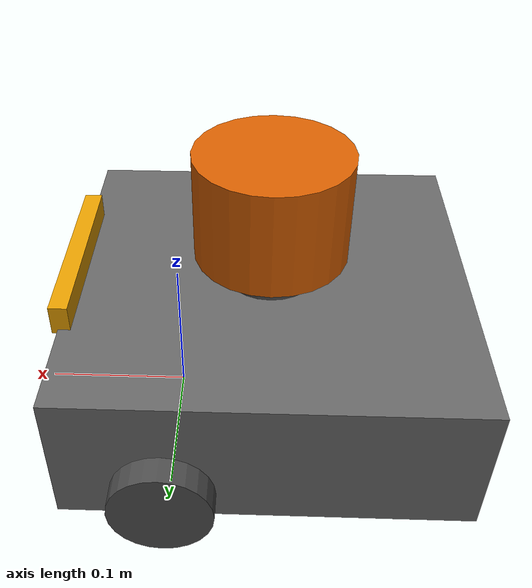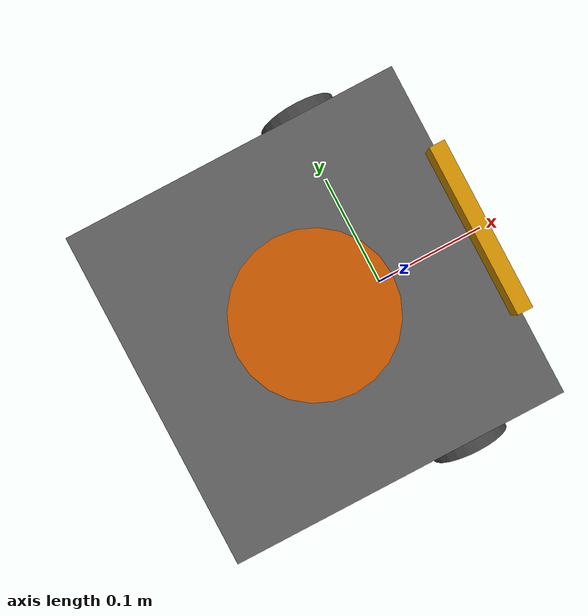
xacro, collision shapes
<?xml version="1.0" ?>
<robot name="turtlebot3_waffle" xmlns:xacro="http://ros.org/wiki/xacro">
  <xacro:arg name="namespace" default=""/>
  <xacro:property name="namespace" value="$(arg namespace)"/>
  <xacro:arg name="sensor_profile" default="vlp16"/>
  <xacro:property name="sensor_profile" value="$(arg sensor_profile)"/>
  <xacro:arg name="odom_frame" default="map"/>
  <xacro:arg name="publish_odom_tf" default="true"/>
  <xacro:include filename="$(find velodyne_description)/urdf/VLP-16.urdf.xacro"/>
  <!-- Init colour -->
  <material name="black">
      <color rgba="0.0 0.0 0.0 1.0"/>
  </material>

  <material name="dark">
    <color rgba="0.3 0.3 0.3 1.0"/>
  </material>

  <material name="light_black">
    <color rgba="0.4 0.4 0.4 1.0"/>
  </material>

  <material name="blue">
    <color rgba="0.0 0.0 0.8 1.0"/>
  </material>

  <material name="green">
    <color rgba="0.0 0.8 0.0 1.0"/>
  </material>

  <material name="grey">
    <color rgba="0.5 0.5 0.5 1.0"/>
  </material>

  <material name="orange">
    <color rgba="1.0 0.4235 0.0392 1.0"/>
  </material>

  <material name="brown">
    <color rgba="0.8706 0.8118 0.7647 1.0"/>
  </material>

  <material name="red">
    <color rgba="0.8 0.0 0.0 1.0"/>
  </material>

  <material name="white">
    <color rgba="1.0 1.0 1.0 1.0"/>
  </material>

  <link name="${namespace}base_footprint"/>

  <joint name="${namespace}base_joint" type="fixed">
    <parent link="${namespace}base_footprint"/>
    <child link="${namespace}base_link" />
    <origin xyz="0 0 0.010" rpy="0 0 0"/>
  </joint>

  <link name="${namespace}base_link">
    <visual>
      <origin xyz="-0.064 0 0.0" rpy="0 0 0"/>
      <geometry>
        <mesh filename="package://tb3_tare_sim/meshes/bases/waffle_base.stl" scale="0.001 0.001 0.001"/>
      </geometry>
      <material name="light_black"/>
    </visual>

    <collision>
      <origin xyz="-0.064 0 0.047" rpy="0 0 0"/>
      <geometry>
        <box size="0.266 0.266 0.094"/>
      </geometry>
    </collision>

    <inertial>
      <origin xyz="0 0 0" rpy="0 0 0"/>
      <mass value="1.3729096e+00"/>
      <inertia ixx="8.7002718e-03" ixy="-4.7576583e-05" ixz="1.1160499e-04"
               iyy="8.6195418e-03" iyz="-3.5422299e-06"
               izz="1.4612727e-02" />
    </inertial>
  </link>

  <joint name="${namespace}wheel_left_joint" type="continuous">
    <parent link="${namespace}base_link"/>
    <child link="${namespace}wheel_left_link"/>
    <origin xyz="0.0 0.144 0.023" rpy="-1.57 0 0"/>
    <axis xyz="0 0 1"/>
  </joint>

  <link name="${namespace}wheel_left_link">
    <visual>
      <origin xyz="0 0 0" rpy="1.57 0 0"/>
      <geometry>
        <mesh filename="package://tb3_tare_sim/meshes/wheels/left_tire.stl" scale="0.001 0.001 0.001"/>
      </geometry>
      <material name="dark"/>
    </visual>

    <collision>
      <origin xyz="0 0 0" rpy="0 0 0"/>
      <geometry>
        <cylinder length="0.018" radius="0.033"/>
      </geometry>
    </collision>

    <inertial>
      <origin xyz="0 0 0" />
      <mass value="2.8498940e-02" />
      <inertia ixx="1.1175580e-05" ixy="-4.2369783e-11" ixz="-5.9381719e-09"
               iyy="1.1192413e-05" iyz="-1.4400107e-11"
               izz="2.0712558e-05" />
      </inertial>
  </link>

  <joint name="${namespace}wheel_right_joint" type="continuous">
    <parent link="${namespace}base_link"/>
    <child link="${namespace}wheel_right_link"/>
    <origin xyz="0.0 -0.144 0.023" rpy="-1.57 0 0"/>
    <axis xyz="0 0 1"/>
  </joint>

  <link name="${namespace}wheel_right_link">
    <visual>
      <origin xyz="0 0 0" rpy="1.57 0 0"/>
      <geometry>
        <mesh filename="package://tb3_tare_sim/meshes/wheels/right_tire.stl" scale="0.001 0.001 0.001"/>
      </geometry>
      <material name="dark"/>
    </visual>

    <collision>
      <origin xyz="0 0 0" rpy="0 0 0"/>
      <geometry>
        <cylinder length="0.018" radius="0.033"/>
      </geometry>
    </collision>

    <inertial>
      <origin xyz="0 0 0" />
      <mass value="2.8498940e-02" />
      <inertia ixx="1.1175580e-05" ixy="-4.2369783e-11" ixz="-5.9381719e-09"
               iyy="1.1192413e-05" iyz="-1.4400107e-11"
               izz="2.0712558e-05" />
      </inertial>
  </link>

  <joint name="${namespace}caster_back_right_joint" type="fixed">
    <parent link="${namespace}base_link"/>
    <child link="${namespace}caster_back_right_link"/>
    <origin xyz="-0.177 -0.064 -0.004" rpy="-1.57 0 0"/>
  </joint>

  <link name="${namespace}caster_back_right_link">
    <collision>
      <origin xyz="0 0.001 0" rpy="0 0 0"/>
      <geometry>
        <box size="0.030 0.009 0.020"/>
      </geometry>
    </collision>

    <inertial>
      <origin xyz="0 0 0" />
      <mass value="0.005" />
      <inertia ixx="0.001" ixy="0.0" ixz="0.0"
               iyy="0.001" iyz="0.0"
               izz="0.001" />
    </inertial>
  </link>

  <joint name="${namespace}caster_back_left_joint" type="fixed">
    <parent link="${namespace}base_link"/>
    <child link="${namespace}caster_back_left_link"/>
    <origin xyz="-0.177 0.064 -0.004" rpy="-1.57 0 0"/>
  </joint>

  <link name="${namespace}caster_back_left_link">
    <collision>
      <origin xyz="0 0.001 0" rpy="0 0 0"/>
      <geometry>
        <box size="0.030 0.009 0.020"/>
      </geometry>
    </collision>

    <inertial>
      <origin xyz="0 0 0" />
      <mass value="0.005" />
      <inertia ixx="0.001" ixy="0.0" ixz="0.0"
               iyy="0.001" iyz="0.0"
               izz="0.001" />
    </inertial>
  </link>

  <joint name="${namespace}imu_joint" type="fixed">
    <parent link="${namespace}base_link"/>
    <child link="${namespace}imu_link"/>
    <origin xyz="0.0 0 0.068" rpy="0 0 0"/>
  </joint>

  <link name="${namespace}imu_link"/>

  <joint name="${namespace}scan_joint" type="fixed">
    <parent link="${namespace}base_link"/>
    <child link="${namespace}base_scan"/>
    <origin xyz="-0.064 0 0.122" rpy="0 0 0"/>
  </joint>

  <link name="${namespace}base_scan">
    <visual>
      <origin xyz="0 0 0" rpy="0 0 0"/>
      <geometry>
        <cylinder length="0.065" radius="0.032"/>
      </geometry>
      <material name="dark"/>
    </visual>
    <visual>
      <origin xyz="0 0 0.010" rpy="0 0 0"/>
      <geometry>
        <cylinder length="0.012" radius="0.033"/>
      </geometry>
      <material name="mid360_blue">
        <color rgba="0.08 0.48 0.82 1.0"/>
      </material>
    </visual>

    <collision>
      <origin xyz="0 0 0" rpy="0 0 0"/>
      <geometry>
        <cylinder length="0.065" radius="0.032"/>
      </geometry>
    </collision>

    <inertial>
      <mass value="0.114" />
      <origin xyz="0 0 0" />
      <inertia ixx="0.001" ixy="0.0" ixz="0.0"
               iyy="0.001" iyz="0.0"
               izz="0.001" />
    </inertial>
  </link>

  <joint name="${namespace}camera_joint" type="fixed">
    <origin xyz="0.064 -0.065 0.094" rpy="0 0 0"/>
    <parent link="${namespace}base_link"/>
    <child link="${namespace}camera_link"/>
  </joint>

  <link name="${namespace}camera_link">
    <visual>
     <origin xyz="0 0 0" rpy="1.57 0 1.57"/>
      <geometry>
       <mesh filename="package://tb3_tare_sim/meshes/sensors/r200.dae" />
      </geometry>
    </visual>
    <collision>
      <origin xyz="0.003 0.065 0.007" rpy="0 0 0"/>
      <geometry>
        <box size="0.012 0.132 0.020"/>
      </geometry>
    </collision>

    <!-- This inertial field needs doesn't contain reliable data!! -->
  </link>

  <joint name="${namespace}camera_rgb_joint" type="fixed">
    <origin xyz="0.005 0.018 0.013" rpy="0 0 0"/>
    <parent link="${namespace}camera_link"/>
    <child link="${namespace}camera_rgb_frame"/>
  </joint>
  <link name="${namespace}camera_rgb_frame"/>

  <joint name="${namespace}camera_rgb_optical_joint" type="fixed">
    <origin xyz="0 0 0" rpy="-1.57 0 -1.57"/>
    <parent link="${namespace}camera_rgb_frame"/>
    <child link="${namespace}camera_rgb_optical_frame"/>
  </joint>
  <link name="${namespace}camera_rgb_optical_frame"/>

  <joint name="${namespace}camera_depth_joint" type="fixed">
    <origin xyz="0.005 0.028 0.013" rpy="0 0 0"/>
    <parent link="${namespace}camera_link"/>
    <child link="${namespace}camera_depth_frame"/>
  </joint>
  <link name="${namespace}camera_depth_frame"/>

  <joint name="${namespace}camera_depth_optical_joint" type="fixed">
    <origin xyz="0 0 0" rpy="-1.57 0 -1.57"/>
    <parent link="${namespace}camera_depth_frame"/>
    <child link="${namespace}camera_depth_optical_frame"/>
  </joint>
  <link name="${namespace}camera_depth_optical_frame"/>

  <!-- Gazebo ROS 1 differential-drive interface.  The official local planner
       publishes TwistStamped; tb3_tare_sim provides the small type bridge. -->
  <gazebo>
    <plugin name="tb3_tare_diff_drive" filename="libgazebo_ros_diff_drive.so">
      <updateRate>50</updateRate>
      <rosDebugLevel>na</rosDebugLevel>
      <leftJoint>wheel_left_joint</leftJoint>
      <rightJoint>wheel_right_joint</rightJoint>
      <wheelSeparation>0.287</wheelSeparation>
      <wheelDiameter>0.066</wheelDiameter>
      <wheelTorque>5.0</wheelTorque>
      <wheelAcceleration>3.0</wheelAcceleration>
      <commandTopic>cmd_vel</commandTopic>
      <odometryTopic>odom</odometryTopic>
      <odometryFrame>$(arg odom_frame)</odometryFrame>
      <robotBaseFrame>base_footprint</robotBaseFrame>
      <publishOdomTF>$(arg publish_odom_tf)</publishOdomTF>
      <publishWheelTF>false</publishWheelTF>
      <publishWheelJointState>false</publishWheelJointState>
      <publishTf>true</publishTf>
      <odometrySource>world</odometrySource>
    </plugin>
  </gazebo>

  <!-- Gazebo IMU input for the official FAST-LIO2 estimator. -->
  <gazebo reference="${namespace}imu_link">
    <sensor name="tb3_imu" type="imu">
      <always_on>true</always_on>
      <update_rate>200</update_rate>
      <visualize>false</visualize>
      <imu>
        <angular_velocity>
          <x><noise type="gaussian"><mean>0</mean><stddev>0.0002</stddev></noise></x>
          <y><noise type="gaussian"><mean>0</mean><stddev>0.0002</stddev></noise></y>
          <z><noise type="gaussian"><mean>0</mean><stddev>0.0002</stddev></noise></z>
        </angular_velocity>
        <linear_acceleration>
          <x><noise type="gaussian"><mean>0</mean><stddev>0.017</stddev></noise></x>
          <y><noise type="gaussian"><mean>0</mean><stddev>0.017</stddev></noise></y>
          <z><noise type="gaussian"><mean>0</mean><stddev>0.017</stddev></noise></z>
        </linear_acceleration>
      </imu>
      <plugin name="tb3_tare_imu" filename="libgazebo_ros_imu_sensor.so">
        <topicName>/imu/data</topicName>
        <frameName>${namespace}imu_link</frameName>
        <updateRateHZ>200</updateRateHZ>
        <gaussianNoise>0.0</gaussianNoise>
        <initialOrientationAsReference>false</initialOrientationAsReference>
      </plugin>
    </sensor>
  </gazebo>

  <gazebo reference="wheel_left_link">
    <mu1>1.0</mu1>
    <mu2>1.0</mu2>
    <kp>1000000.0</kp>
    <kd>100.0</kd>
  </gazebo>
  <gazebo reference="wheel_right_link">
    <mu1>1.0</mu1>
    <mu2>1.0</mu2>
    <kp>1000000.0</kp>
    <kd>100.0</kd>
  </gazebo>

  <xacro:if value="${sensor_profile == 'mid360'}">
    <xacro:VLP-16 parent="${namespace}base_link" name="${namespace}sensor"
      topic="/velodyne_points" hz="10" samples="180" lasers="16"
      min_angle="0.0" max_angle="6.2831853"
      min_vertical_angle="-0.122" max_vertical_angle="0.907"
      collision_range="0.1" min_range="0.1" max_range="70.0"
      range_resolution="0.02" noise="0.01" organize_cloud="true" gpu="false">
      <origin xyz="-0.064 0 0.112" rpy="0 0 0"/>
    </xacro:VLP-16>
  </xacro:if>
  <xacro:unless value="${sensor_profile == 'mid360'}">
    <xacro:VLP-16 parent="${namespace}base_link" name="${namespace}sensor"
      topic="/velodyne_points" hz="5" samples="350" lasers="16"
      min_angle="-${3.1415926535897931}" max_angle="${3.1415926535897931}"
      min_vertical_angle="-${15.0*3.1415926535897931/180.0}"
      max_vertical_angle="${15.0*3.1415926535897931/180.0}"
      collision_range="0.3" min_range="0.1" max_range="130.0"
      range_resolution="0.001" noise="0.008" organize_cloud="true" gpu="false">
      <origin xyz="-0.064 0 0.112" rpy="0 0 0"/>
    </xacro:VLP-16>
  </xacro:unless>

</robot>

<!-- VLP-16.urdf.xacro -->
<robot xmlns:xacro="http://www.ros.org/wiki/xacro" name="VLP-16">
  <xacro:property name="M_PI" value="3.1415926535897931" />
  <xacro:macro name="VLP-16" params="*origin is_sim:=true parent:=base_link name:=velodyne tf_prefix:='' topic:=/velodyne_points organize_cloud:=false hz:=10 lasers:=16 samples:=1875 collision_range:=0.3 min_range:=0.0 max_range:=100.0 noise:=0.008 min_angle:=-${M_PI} max_angle:=${M_PI} gpu:=false">

    <joint name="${name}_base_mount_joint" type="fixed">
      <xacro:insert_block name="origin" />
      <parent link="${parent}"/>
      <child link="${name}_base_link"/>
    </joint>

    <link name="${name}_base_link">
      <inertial>
        <mass value="0.83"/>
        <origin xyz="0 0 0.03585"/>
        <inertia ixx="${(0.83 * (3.0*0.0516*0.0516 + 0.0717*0.0717)) / 12.0}" ixy="0" ixz="0"
          iyy="${(0.83 * (3.0*0.0516*0.0516 + 0.0717*0.0717)) / 12.0}" iyz="0"
          izz="${0.5 * 0.83 * (0.0516*0.0516)}"/>
      </inertial>
      <visual>
        <geometry>
          <mesh filename="package://velodyne_description/meshes/VLP16_base_1.dae" />
        </geometry>
      </visual>
      <visual>
        <geometry>
          <mesh filename="package://velodyne_description/meshes/VLP16_base_2.dae" />
        </geometry>
      </visual>
      <collision>
        <origin rpy="0 0 0" xyz="0 0 0.03585"/>
        <geometry>
          <cylinder radius="0.0516" length="0.0717"/>
        </geometry>
      </collision>
    </link>

    <joint name="${name}_base_scan_joint" type="fixed" >
      <origin xyz="0 0 0.0377" rpy="0 0 0" />
      <parent link="${name}_base_link" />
      <child link="${name}"/>
    </joint>

    <link name="${name}">
      <inertial>
        <mass value="0.01"/>
        <origin xyz="0 0 0"/>
        <inertia ixx="1e-7" ixy="0" ixz="0" iyy="1e-7" iyz="0" izz="1e-7"/>
      </inertial>
      <visual>
        <origin xyz="0 0 -0.0377" />
        <geometry>
          <mesh filename="package://velodyne_description/meshes/VLP16_scan.dae" />
        </geometry>
      </visual>
      <collision>
        <geometry>
          <sphere radius="0"/>
        </geometry>
      </collision>
    </link>

    <!-- Gazebo requires the velodyne_gazebo_plugins package -->
    <xacro:if value="${is_sim}">
        <gazebo reference="${name}">
            <xacro:if value="${gpu}">
                <sensor type="gpu_ray" name="${name}-VLP16">
                <pose>0 0 0 0 0 0</pose>
                <visualize>false</visualize>
                <update_rate>${hz}</update_rate>
                <ray>
                    <scan>
                    <horizontal>
                        <samples>${samples}</samples>
                        <resolution>1</resolution>
                        <min_angle>${min_angle}</min_angle>
                        <max_angle>${max_angle}</max_angle>
                    </horizontal>
                    <vertical>
                        <samples>${lasers}</samples>
                        <resolution>1</resolution>
                        <min_angle>-${15.0*M_PI/180.0}</min_angle>
                        <max_angle> ${15.0*M_PI/180.0}</max_angle>
                    </vertical>
                    </scan>
                    <range>
                    <min>${collision_range}</min>
                    <max>${max_range+1}</max>
                    <resolution>0.001</resolution>
                    </range>
                    <noise>
                    <type>gaussian</type>
                    <mean>0.0</mean>
                    <stddev>0.0</stddev>
                    </noise>
                </ray>
                <plugin name="gazebo_ros_laser_controller" filename="libgazebo_ros_velodyne_laser.so">
                    <ros>
                    <namespace>/${name}</namespace>
                    <remapping>~/out:=${topic}</remapping>
                    </ros>
                    <tf_prefix>${tf_prefix}</tf_prefix>
                    <frame_name>${name}</frame_name>
                    <organize_cloud>${organize_cloud}</organize_cloud>
                    <min_range>${min_range}</min_range>
                    <max_range>${max_range}</max_range>
                    <gaussian_noise>${noise}</gaussian_noise>
                </plugin>
                </sensor>
            </xacro:if>
            <xacro:unless value="${gpu}">
                <sensor type="ray" name="${name}-VLP16">
                <pose>0 0 0 0 0 0</pose>
                <visualize>false</visualize>
                <update_rate>${hz}</update_rate>
                <ray>
                    <scan>
                    <horizontal>
                        <samples>${samples}</samples>
                        <resolution>1</resolution>
                        <min_angle>${min_angle}</min_angle>
                        <max_angle>${max_angle}</max_angle>
                    </horizontal>
                    <vertical>
                        <samples>${lasers}</samples>
                        <resolution>1</resolution>
                        <min_angle>-${15.0*M_PI/180.0}</min_angle>
                        <max_angle> ${15.0*M_PI/180.0}</max_angle>
                    </vertical>
                    </scan>
                    <range>
                    <min>${collision_range}</min>
                    <max>${max_range+1}</max>
                    <resolution>0.001</resolution>
                    </range>
                    <noise>
                    <type>gaussian</type>
                    <mean>0.0</mean>
                    <stddev>0.0</stddev>
                    </noise>
                </ray>
                <plugin name="gazebo_ros_laser_controller" filename="libgazebo_ros_velodyne_laser.so">
                    <ros>
                    <namespace>/${name}</namespace>
                    <remapping>~/out:=${topic}</remapping>
                    </ros>
                    <tf_prefix>${tf_prefix}</tf_prefix>
                    <frame_name>${name}</frame_name>
                    <organize_cloud>${organize_cloud}</organize_cloud>
                    <min_range>${min_range}</min_range>
                    <max_range>${max_range}</max_range>
                    <gaussian_noise>${noise}</gaussian_noise>
                </plugin>
                </sensor>
            </xacro:unless>
        </gazebo>
    </xacro:if>

  </xacro:macro>
</robot>
